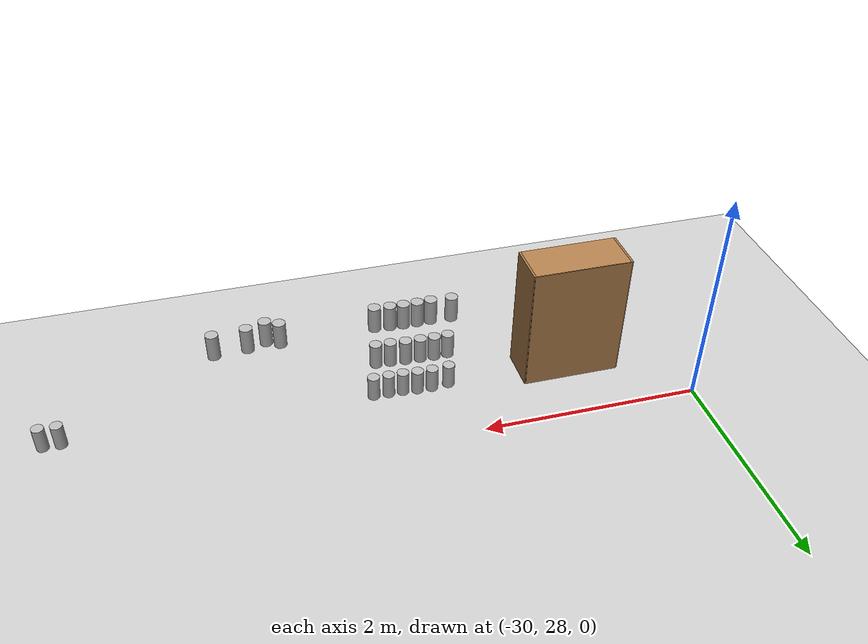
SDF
<sdf version="1.7">
 <world name="default">
  <model name="ground_plane">
   <static>1</static>
   <link name="link">
    <collision name="collision">
     <geometry><plane><normal>0 0 1</normal><size>100 100</size></plane></geometry>
     <surface>
      <contact><collide_bitmask>65535</collide_bitmask></contact>
      <friction><ode><mu>100</mu><mu2>50</mu2></ode></friction>
     </surface>
    </collision>
    <visual name="visual">
     <cast_shadows>0</cast_shadows>
     <geometry><plane><normal>0 0 1</normal><size>100 100</size></plane></geometry>
     <material>
      <script><uri>file://media/materials/scripts/gazebo.material</uri><name>Gazebo/Grey</name></script>
     </material>
    </visual>
   </link>
  </model>
  <model name="bookshelf_clone_clone_clone_0">
   <static>1</static>
   <link name="link">
    <inertial><mass>1</mass></inertial>
    <collision name="back">
     <pose>0 0.005 0.6 0 -0 0</pose>
     <geometry><box><size>0.9 0.01 1.2</size></box></geometry>
    </collision>
    <visual name="visual1">
     <pose>0 0.005 0.6 0 -0 0</pose>
     <geometry><box><size>0.9 0.01 1.2</size></box></geometry>
     <material>
      <script><uri>file://media/materials/scripts/gazebo.material</uri><name>Gazebo/Wood</name></script>
     </material>
    </visual>
    <collision name="left_side">
     <pose>0.45 -0.195 0.6 0 -0 0</pose>
     <geometry><box><size>0.02 0.4 1.2</size></box></geometry>
    </collision>
    <visual name="visual2">
     <pose>0.45 -0.195 0.6 0 -0 0</pose>
     <geometry><box><size>0.02 0.4 1.2</size></box></geometry>
     <material>
      <script><uri>file://media/materials/scripts/gazebo.material</uri><name>Gazebo/Wood</name></script>
     </material>
    </visual>
    <collision name="right_side">
     <pose>-0.45 -0.195 0.6 0 -0 0</pose>
     <geometry><box><size>0.02 0.4 1.2</size></box></geometry>
    </collision>
    <visual name="visual3">
     <pose>-0.45 -0.195 0.6 0 -0 0</pose>
     <geometry><box><size>0.02 0.4 1.2</size></box></geometry>
     <material>
      <script><uri>file://media/materials/scripts/gazebo.material</uri><name>Gazebo/Wood</name></script>
     </material>
    </visual>
    <collision name="bottom">
     <pose>0 -0.195 0.03 0 -0 0</pose>
     <geometry><box><size>0.88 0.4 0.06</size></box></geometry>
    </collision>
    <visual name="visual4">
     <pose>0 -0.195 0.03 0 -0 0</pose>
     <geometry><box><size>0.88 0.4 0.06</size></box></geometry>
     <material>
      <script><uri>file://media/materials/scripts/gazebo.material</uri><name>Gazebo/Wood</name></script>
     </material>
    </visual>
    <collision name="top">
     <pose>0 -0.195 1.19 0 -0 0</pose>
     <geometry><box><size>0.88 0.4 0.02</size></box></geometry>
    </collision>
    <visual name="visual5">
     <pose>0 -0.195 1.19 0 -0 0</pose>
     <geometry><box><size>0.88 0.4 0.02</size></box></geometry>
     <material>
      <script><uri>file://media/materials/scripts/gazebo.material</uri><name>Gazebo/Wood</name></script>
     </material>
    </visual>
    <collision name="low_shelf">
     <pose>0 -0.195 0.43 0 -0 0</pose>
     <geometry><box><size>0.88 0.4 0.02</size></box></geometry>
    </collision>
    <visual name="visual6">
     <pose>0 -0.195 0.43 0 -0 0</pose>
     <geometry><box><size>0.88 0.4 0.02</size></box></geometry>
     <material>
      <script><uri>file://media/materials/scripts/gazebo.material</uri><name>Gazebo/Wood</name></script>
     </material>
    </visual>
    <collision name="high_shelf">
     <pose>0 -0.195 0.8 0 -0 0</pose>
     <geometry><box><size>0.88 0.4 0.02</size></box></geometry>
    </collision>
    <visual name="visual7">
     <pose>0 -0.195 0.8 0 -0 0</pose>
     <geometry><box><size>0.88 0.4 0.02</size></box></geometry>
     <material>
      <script><uri>file://media/materials/scripts/gazebo.material</uri><name>Gazebo/Wood</name></script>
     </material>
    </visual>
   </link>
   <pose>-29 27.5 0 0 -0 0</pose>
  </model>
  <model name="beer_clone">
   <link name="link">
    <pose>0 0 0.115 0 -0 0</pose>
    <inertial>
     <mass>0.39</mass>
     <inertia><ixx>0.00058</ixx><ixy>0</ixy><ixz>0</ixz><iyy>0.00058</iyy><iyz>0</iyz><izz>0.00019</izz></inertia>
    </inertial>
    <collision name="collision">
     <geometry><cylinder><radius>0.055</radius><length>0.23</length></cylinder></geometry>
    </collision>
    <visual name="visual">
     <geometry><cylinder><radius>0.055</radius><length>0.23</length></cylinder></geometry>
     <material>
      <script>
       <uri>model://beer/materials/scripts</uri>
       <uri>model://beer/materials/textures</uri>
       <name>Beer/Diffuse</name>
      </script>
     </material>
    </visual>
   </link>
   <pose>-27.6754 27.4027 0.059991 1.4e-05 -3e-06 0.005367</pose>
  </model>
  <model name="beer_clone_0">
   <link name="link">
    <pose>0 0 0.115 0 -0 0</pose>
    <inertial>
     <mass>0.39</mass>
     <inertia><ixx>0.00058</ixx><ixy>0</ixy><ixz>0</ixz><iyy>0.00058</iyy><iyz>0</iyz><izz>0.00019</izz></inertia>
    </inertial>
    <collision name="collision">
     <geometry><cylinder><radius>0.055</radius><length>0.23</length></cylinder></geometry>
    </collision>
    <visual name="visual">
     <geometry><cylinder><radius>0.055</radius><length>0.23</length></cylinder></geometry>
     <material>
      <script>
       <uri>model://beer/materials/scripts</uri>
       <uri>model://beer/materials/textures</uri>
       <name>Beer/Diffuse</name>
      </script>
     </material>
    </visual>
   </link>
   <pose>-27.5399 27.4002 0.060001 2.6e-05 -6e-06 0.011438</pose>
  </model>
  <model name="beer_clone_1">
   <link name="link">
    <pose>0 0 0.115 0 -0 0</pose>
    <inertial>
     <mass>0.39</mass>
     <inertia><ixx>0.00058</ixx><ixy>0</ixy><ixz>0</ixz><iyy>0.00058</iyy><iyz>0</iyz><izz>0.00019</izz></inertia>
    </inertial>
    <collision name="collision">
     <geometry><cylinder><radius>0.055</radius><length>0.23</length></cylinder></geometry>
    </collision>
    <visual name="visual">
     <geometry><cylinder><radius>0.055</radius><length>0.23</length></cylinder></geometry>
     <material>
      <script>
       <uri>model://beer/materials/scripts</uri>
       <uri>model://beer/materials/textures</uri>
       <name>Beer/Diffuse</name>
      </script>
     </material>
    </visual>
   </link>
   <pose>-27.4066 27.3861 0.060001 -1.4e-05 2e-06 0.013882</pose>
  </model>
  <model name="beer_clone_2">
   <link name="link">
    <pose>0 0 0.115 0 -0 0</pose>
    <inertial>
     <mass>0.39</mass>
     <inertia><ixx>0.00058</ixx><ixy>0</ixy><ixz>0</ixz><iyy>0.00058</iyy><iyz>0</iyz><izz>0.00019</izz></inertia>
    </inertial>
    <collision name="collision">
     <geometry><cylinder><radius>0.055</radius><length>0.23</length></cylinder></geometry>
    </collision>
    <visual name="visual">
     <geometry><cylinder><radius>0.055</radius><length>0.23</length></cylinder></geometry>
     <material>
      <script>
       <uri>model://beer/materials/scripts</uri>
       <uri>model://beer/materials/textures</uri>
       <name>Beer/Diffuse</name>
      </script>
     </material>
    </visual>
   </link>
   <pose>-27.2747 27.3835 0.060002 2.8e-05 3e-06 0.015463</pose>
  </model>
  <model name="beer_clone_3">
   <link name="link">
    <pose>0 0 0.115 0 -0 0</pose>
    <inertial>
     <mass>0.39</mass>
     <inertia><ixx>0.00058</ixx><ixy>0</ixy><ixz>0</ixz><iyy>0.00058</iyy><iyz>0</iyz><izz>0.00019</izz></inertia>
    </inertial>
    <collision name="collision">
     <geometry><cylinder><radius>0.055</radius><length>0.23</length></cylinder></geometry>
    </collision>
    <visual name="visual">
     <geometry><cylinder><radius>0.055</radius><length>0.23</length></cylinder></geometry>
     <material>
      <script>
       <uri>model://beer/materials/scripts</uri>
       <uri>model://beer/materials/textures</uri>
       <name>Beer/Diffuse</name>
      </script>
     </material>
    </visual>
   </link>
   <pose>-27.1363 27.3813 0.060002 6e-06 -2.8e-05 0.001942</pose>
  </model>
  <model name="beer_clone_8_clone">
   <link name="link">
    <pose>0 0 0.115 0 -0 0</pose>
    <inertial>
     <mass>0.39</mass>
     <inertia><ixx>0.00058</ixx><ixy>0</ixy><ixz>0</ixz><iyy>0.00058</iyy><iyz>0</iyz><izz>0.00019</izz></inertia>
    </inertial>
    <collision name="collision">
     <geometry><cylinder><radius>0.055</radius><length>0.23</length></cylinder></geometry>
    </collision>
    <visual name="visual">
     <geometry><cylinder><radius>0.055</radius><length>0.23</length></cylinder></geometry>
     <material>
      <script>
       <uri>model://beer/materials/scripts</uri>
       <uri>model://beer/materials/textures</uri>
       <name>Beer/Diffuse</name>
      </script>
     </material>
    </visual>
   </link>
   <pose>-27.8353 27.3897 0.060002 -1e-06 2.6e-05 0.004211</pose>
  </model>
  <model name="beer_clone_9_clone">
   <link name="link">
    <pose>0 0 0.115 0 -0 0</pose>
    <inertial>
     <mass>0.39</mass>
     <inertia><ixx>0.00058</ixx><ixy>0</ixy><ixz>0</ixz><iyy>0.00058</iyy><iyz>0</iyz><izz>0.00019</izz></inertia>
    </inertial>
    <collision name="collision">
     <geometry><cylinder><radius>0.055</radius><length>0.23</length></cylinder></geometry>
    </collision>
    <visual name="visual">
     <geometry><cylinder><radius>0.055</radius><length>0.23</length></cylinder></geometry>
     <material>
      <script>
       <uri>model://beer/materials/scripts</uri>
       <uri>model://beer/materials/textures</uri>
       <name>Beer/Diffuse</name>
      </script>
     </material>
    </visual>
   </link>
   <pose>-27.8088 27.4141 0.440002 4.5e-05 1e-06 0.005165</pose>
  </model>
  <model name="beer_clone_9_clone_0">
   <link name="link">
    <pose>0 0 0.115 0 -0 0</pose>
    <inertial>
     <mass>0.39</mass>
     <inertia><ixx>0.00058</ixx><ixy>0</ixy><ixz>0</ixz><iyy>0.00058</iyy><iyz>0</iyz><izz>0.00019</izz></inertia>
    </inertial>
    <collision name="collision">
     <geometry><cylinder><radius>0.055</radius><length>0.23</length></cylinder></geometry>
    </collision>
    <visual name="visual">
     <geometry><cylinder><radius>0.055</radius><length>0.23</length></cylinder></geometry>
     <material>
      <script>
       <uri>model://beer/materials/scripts</uri>
       <uri>model://beer/materials/textures</uri>
       <name>Beer/Diffuse</name>
      </script>
     </material>
    </visual>
   </link>
   <pose>-27.6841 27.4172 0.439992 0 -2.6e-05 0.00613</pose>
  </model>
  <model name="beer_clone_9_clone_1">
   <link name="link">
    <pose>0 0 0.115 0 -0 0</pose>
    <inertial>
     <mass>0.39</mass>
     <inertia><ixx>0.00058</ixx><ixy>0</ixy><ixz>0</ixz><iyy>0.00058</iyy><iyz>0</iyz><izz>0.00019</izz></inertia>
    </inertial>
    <collision name="collision">
     <geometry><cylinder><radius>0.055</radius><length>0.23</length></cylinder></geometry>
    </collision>
    <visual name="visual">
     <geometry><cylinder><radius>0.055</radius><length>0.23</length></cylinder></geometry>
     <material>
      <script>
       <uri>model://beer/materials/scripts</uri>
       <uri>model://beer/materials/textures</uri>
       <name>Beer/Diffuse</name>
      </script>
     </material>
    </visual>
   </link>
   <pose>-27.5586 27.4148 0.440001 2.3e-05 -6e-06 0.008935</pose>
  </model>
  <model name="beer_clone_9_clone_2">
   <link name="link">
    <pose>0 0 0.115 0 -0 0</pose>
    <inertial>
     <mass>0.39</mass>
     <inertia><ixx>0.00058</ixx><ixy>0</ixy><ixz>0</ixz><iyy>0.00058</iyy><iyz>0</iyz><izz>0.00019</izz></inertia>
    </inertial>
    <collision name="collision">
     <geometry><cylinder><radius>0.055</radius><length>0.23</length></cylinder></geometry>
    </collision>
    <visual name="visual">
     <geometry><cylinder><radius>0.055</radius><length>0.23</length></cylinder></geometry>
     <material>
      <script>
       <uri>model://beer/materials/scripts</uri>
       <uri>model://beer/materials/textures</uri>
       <name>Beer/Diffuse</name>
      </script>
     </material>
    </visual>
   </link>
   <pose>-27.4256 27.4107 0.440002 3e-05 3e-06 0.007968</pose>
  </model>
  <model name="beer_clone_9_clone_3">
   <link name="link">
    <pose>0 0 0.115 0 -0 0</pose>
    <inertial>
     <mass>0.39</mass>
     <inertia><ixx>0.00058</ixx><ixy>0</ixy><ixz>0</ixz><iyy>0.00058</iyy><iyz>0</iyz><izz>0.00019</izz></inertia>
    </inertial>
    <collision name="collision">
     <geometry><cylinder><radius>0.055</radius><length>0.23</length></cylinder></geometry>
    </collision>
    <visual name="visual">
     <geometry><cylinder><radius>0.055</radius><length>0.23</length></cylinder></geometry>
     <material>
      <script>
       <uri>model://beer/materials/scripts</uri>
       <uri>model://beer/materials/textures</uri>
       <name>Beer/Diffuse</name>
      </script>
     </material>
    </visual>
   </link>
   <pose>-27.2903 27.3996 0.440002 3.4e-05 -9e-06 0.008523</pose>
  </model>
  <model name="beer_clone_9_clone_4">
   <link name="link">
    <pose>0 0 0.115 0 -0 0</pose>
    <inertial>
     <mass>0.39</mass>
     <inertia><ixx>0.00058</ixx><ixy>0</ixy><ixz>0</ixz><iyy>0.00058</iyy><iyz>0</iyz><izz>0.00019</izz></inertia>
    </inertial>
    <collision name="collision">
     <geometry><cylinder><radius>0.055</radius><length>0.23</length></cylinder></geometry>
    </collision>
    <visual name="visual">
     <geometry><cylinder><radius>0.055</radius><length>0.23</length></cylinder></geometry>
     <material>
      <script>
       <uri>model://beer/materials/scripts</uri>
       <uri>model://beer/materials/textures</uri>
       <name>Beer/Diffuse</name>
      </script>
     </material>
    </visual>
   </link>
   <pose>-27.1614 27.3936 0.439992 2e-05 -1.8e-05 -0.001784</pose>
  </model>
  <model name="beer_clone_9_clone_9_clone">
   <link name="link">
    <pose>0 0 0.115 0 -0 0</pose>
    <inertial>
     <mass>0.39</mass>
     <inertia><ixx>0.00058</ixx><ixy>0</ixy><ixz>0</ixz><iyy>0.00058</iyy><iyz>0</iyz><izz>0.00019</izz></inertia>
    </inertial>
    <collision name="collision">
     <geometry><cylinder><radius>0.055</radius><length>0.23</length></cylinder></geometry>
    </collision>
    <visual name="visual">
     <geometry><cylinder><radius>0.055</radius><length>0.23</length></cylinder></geometry>
     <material>
      <script>
       <uri>model://beer/materials/scripts</uri>
       <uri>model://beer/materials/textures</uri>
       <name>Beer/Diffuse</name>
      </script>
     </material>
    </visual>
   </link>
   <pose>-27.8442 27.3769 0.80999 -1e-06 2.6e-05 0.006284</pose>
  </model>
  <model name="beer_clone_9_clone_9_clone_0">
   <link name="link">
    <pose>0 0 0.115 0 -0 0</pose>
    <inertial>
     <mass>0.39</mass>
     <inertia><ixx>0.00058</ixx><ixy>0</ixy><ixz>0</ixz><iyy>0.00058</iyy><iyz>0</iyz><izz>0.00019</izz></inertia>
    </inertial>
    <collision name="collision">
     <geometry><cylinder><radius>0.055</radius><length>0.23</length></cylinder></geometry>
    </collision>
    <visual name="visual">
     <geometry><cylinder><radius>0.055</radius><length>0.23</length></cylinder></geometry>
     <material>
      <script>
       <uri>model://beer/materials/scripts</uri>
       <uri>model://beer/materials/textures</uri>
       <name>Beer/Diffuse</name>
      </script>
     </material>
    </visual>
   </link>
   <pose>-27.6598 27.369 0.809992 4e-05 3e-06 0.01016</pose>
  </model>
  <model name="beer_clone_9_clone_9_clone_1">
   <link name="link">
    <pose>0 0 0.115 0 -0 0</pose>
    <inertial>
     <mass>0.39</mass>
     <inertia><ixx>0.00058</ixx><ixy>0</ixy><ixz>0</ixz><iyy>0.00058</iyy><iyz>0</iyz><izz>0.00019</izz></inertia>
    </inertial>
    <collision name="collision">
     <geometry><cylinder><radius>0.055</radius><length>0.23</length></cylinder></geometry>
    </collision>
    <visual name="visual">
     <geometry><cylinder><radius>0.055</radius><length>0.23</length></cylinder></geometry>
     <material>
      <script>
       <uri>model://beer/materials/scripts</uri>
       <uri>model://beer/materials/textures</uri>
       <name>Beer/Diffuse</name>
      </script>
     </material>
    </visual>
   </link>
   <pose>-27.5384 27.372 0.810001 -5e-06 -1.8e-05 0.013632</pose>
  </model>
  <model name="beer_clone_9_clone_9_clone_2">
   <link name="link">
    <pose>0 0 0.115 0 -0 0</pose>
    <inertial>
     <mass>0.39</mass>
     <inertia><ixx>0.00058</ixx><ixy>0</ixy><ixz>0</ixz><iyy>0.00058</iyy><iyz>0</iyz><izz>0.00019</izz></inertia>
    </inertial>
    <collision name="collision">
     <geometry><cylinder><radius>0.055</radius><length>0.23</length></cylinder></geometry>
    </collision>
    <visual name="visual">
     <geometry><cylinder><radius>0.055</radius><length>0.23</length></cylinder></geometry>
     <material>
      <script>
       <uri>model://beer/materials/scripts</uri>
       <uri>model://beer/materials/textures</uri>
       <name>Beer/Diffuse</name>
      </script>
     </material>
    </visual>
   </link>
   <pose>-27.4168 27.3714 0.810002 3.3e-05 -9e-06 0.017154</pose>
  </model>
  <model name="beer_clone_9_clone_9_clone_3">
   <link name="link">
    <pose>0 0 0.115 0 -0 0</pose>
    <inertial>
     <mass>0.39</mass>
     <inertia><ixx>0.00058</ixx><ixy>0</ixy><ixz>0</ixz><iyy>0.00058</iyy><iyz>0</iyz><izz>0.00019</izz></inertia>
    </inertial>
    <collision name="collision">
     <geometry><cylinder><radius>0.055</radius><length>0.23</length></cylinder></geometry>
    </collision>
    <visual name="visual">
     <geometry><cylinder><radius>0.055</radius><length>0.23</length></cylinder></geometry>
     <material>
      <script>
       <uri>model://beer/materials/scripts</uri>
       <uri>model://beer/materials/textures</uri>
       <name>Beer/Diffuse</name>
      </script>
     </material>
    </visual>
   </link>
   <pose>-27.299 27.3655 0.809992 4.2e-05 1e-06 0.017389</pose>
  </model>
  <model name="beer_clone_9_clone_9_clone_4">
   <link name="link">
    <pose>0 0 0.115 0 -0 0</pose>
    <inertial>
     <mass>0.39</mass>
     <inertia><ixx>0.00058</ixx><ixy>0</ixy><ixz>0</ixz><iyy>0.00058</iyy><iyz>0</iyz><izz>0.00019</izz></inertia>
    </inertial>
    <collision name="collision">
     <geometry><cylinder><radius>0.055</radius><length>0.23</length></cylinder></geometry>
    </collision>
    <visual name="visual">
     <geometry><cylinder><radius>0.055</radius><length>0.23</length></cylinder></geometry>
     <material>
      <script>
       <uri>model://beer/materials/scripts</uri>
       <uri>model://beer/materials/textures</uri>
       <name>Beer/Diffuse</name>
      </script>
     </material>
    </visual>
   </link>
   <pose>-27.1651 27.3558 0.810002 2.5e-05 -2.6e-05 0.032636</pose>
  </model>
  <model name="beer_clone_7_clone_2">
   <link name="link">
    <pose>0 0 0.115 0 -0 0</pose>
    <inertial>
     <mass>0.39</mass>
     <inertia><ixx>0.00058</ixx><ixy>0</ixy><ixz>0</ixz><iyy>0.00058</iyy><iyz>0</iyz><izz>0.00019</izz></inertia>
    </inertial>
    <collision name="collision">
     <geometry><cylinder><radius>0.055</radius><length>0.23</length></cylinder></geometry>
    </collision>
    <visual name="visual">
     <geometry><cylinder><radius>0.055</radius><length>0.23</length></cylinder></geometry>
     <material>
      <script>
       <uri>model://beer/materials/scripts</uri>
       <uri>model://beer/materials/textures</uri>
       <name>Beer/Diffuse</name>
      </script>
     </material>
    </visual>
   </link>
   <pose>-24.3929 27.2994 0.060002 3.1e-05 2e-06 0.019775</pose>
  </model>
  <model name="beer_clone_7_clone_3">
   <link name="link">
    <pose>0 0 0.115 0 -0 0</pose>
    <inertial>
     <mass>0.39</mass>
     <inertia><ixx>0.00058</ixx><ixy>0</ixy><ixz>0</ixz><iyy>0.00058</iyy><iyz>0</iyz><izz>0.00019</izz></inertia>
    </inertial>
    <collision name="collision">
     <geometry><cylinder><radius>0.055</radius><length>0.23</length></cylinder></geometry>
    </collision>
    <visual name="visual">
     <geometry><cylinder><radius>0.055</radius><length>0.23</length></cylinder></geometry>
     <material>
      <script>
       <uri>model://beer/materials/scripts</uri>
       <uri>model://beer/materials/textures</uri>
       <name>Beer/Diffuse</name>
      </script>
     </material>
    </visual>
   </link>
   <pose>-24.239 27.2972 0.060002 2.9e-05 1.9e-05 0.016723</pose>
  </model>
  <model name="beer_clone_9_clone_9_clone_6_clone">
   <link name="link">
    <pose>0 0 0.115 0 -0 0</pose>
    <inertial>
     <mass>0.39</mass>
     <inertia><ixx>0.00058</ixx><ixy>0</ixy><ixz>0</ixz><iyy>0.00058</iyy><iyz>0</iyz><izz>0.00019</izz></inertia>
    </inertial>
    <collision name="collision">
     <geometry><cylinder><radius>0.055</radius><length>0.23</length></cylinder></geometry>
    </collision>
    <visual name="visual">
     <geometry><cylinder><radius>0.055</radius><length>0.23</length></cylinder></geometry>
     <material>
      <script>
       <uri>model://beer/materials/scripts</uri>
       <uri>model://beer/materials/textures</uri>
       <name>Beer/Diffuse</name>
      </script>
     </material>
    </visual>
   </link>
   <pose>-26.3475 27.3606 0.809991 0 1e-06 0.005982</pose>
  </model>
  <model name="beer_clone_9_clone_9_clone_6_clone_0">
   <link name="link">
    <pose>0 0 0.115 0 -0 0</pose>
    <inertial>
     <mass>0.39</mass>
     <inertia><ixx>0.00058</ixx><ixy>0</ixy><ixz>0</ixz><iyy>0.00058</iyy><iyz>0</iyz><izz>0.00019</izz></inertia>
    </inertial>
    <collision name="collision">
     <geometry><cylinder><radius>0.055</radius><length>0.23</length></cylinder></geometry>
    </collision>
    <visual name="visual">
     <geometry><cylinder><radius>0.055</radius><length>0.23</length></cylinder></geometry>
     <material>
      <script>
       <uri>model://beer/materials/scripts</uri>
       <uri>model://beer/materials/textures</uri>
       <name>Beer/Diffuse</name>
      </script>
     </material>
    </visual>
   </link>
   <pose>-26.2351 27.3076 0.810002 -1e-06 2.6e-05 0.005631</pose>
  </model>
  <model name="beer_clone_9_clone_9_clone_6_clone_1">
   <link name="link">
    <pose>0 0 0.115 0 -0 0</pose>
    <inertial>
     <mass>0.39</mass>
     <inertia><ixx>0.00058</ixx><ixy>0</ixy><ixz>0</ixz><iyy>0.00058</iyy><iyz>0</iyz><izz>0.00019</izz></inertia>
    </inertial>
    <collision name="collision">
     <geometry><cylinder><radius>0.055</radius><length>0.23</length></cylinder></geometry>
    </collision>
    <visual name="visual">
     <geometry><cylinder><radius>0.055</radius><length>0.23</length></cylinder></geometry>
     <material>
      <script>
       <uri>model://beer/materials/scripts</uri>
       <uri>model://beer/materials/textures</uri>
       <name>Beer/Diffuse</name>
      </script>
     </material>
    </visual>
   </link>
   <pose>-26.0704 27.3599 0.81 -1e-06 -1e-06 0.006407</pose>
  </model>
  <model name="beer_clone_9_clone_9_clone_6_clone_3">
   <link name="link">
    <pose>0 0 0.115 0 -0 0</pose>
    <inertial>
     <mass>0.39</mass>
     <inertia><ixx>0.00058</ixx><ixy>0</ixy><ixz>0</ixz><iyy>0.00058</iyy><iyz>0</iyz><izz>0.00019</izz></inertia>
    </inertial>
    <collision name="collision">
     <geometry><cylinder><radius>0.055</radius><length>0.23</length></cylinder></geometry>
    </collision>
    <visual name="visual">
     <geometry><cylinder><radius>0.055</radius><length>0.23</length></cylinder></geometry>
     <material>
      <script>
       <uri>model://beer/materials/scripts</uri>
       <uri>model://beer/materials/textures</uri>
       <name>Beer/Diffuse</name>
      </script>
     </material>
    </visual>
   </link>
   <pose>-25.7863 27.3783 0.810002 2.9e-05 -1.6e-05 0.007079</pose>
  </model>
 </world>
</sdf>
